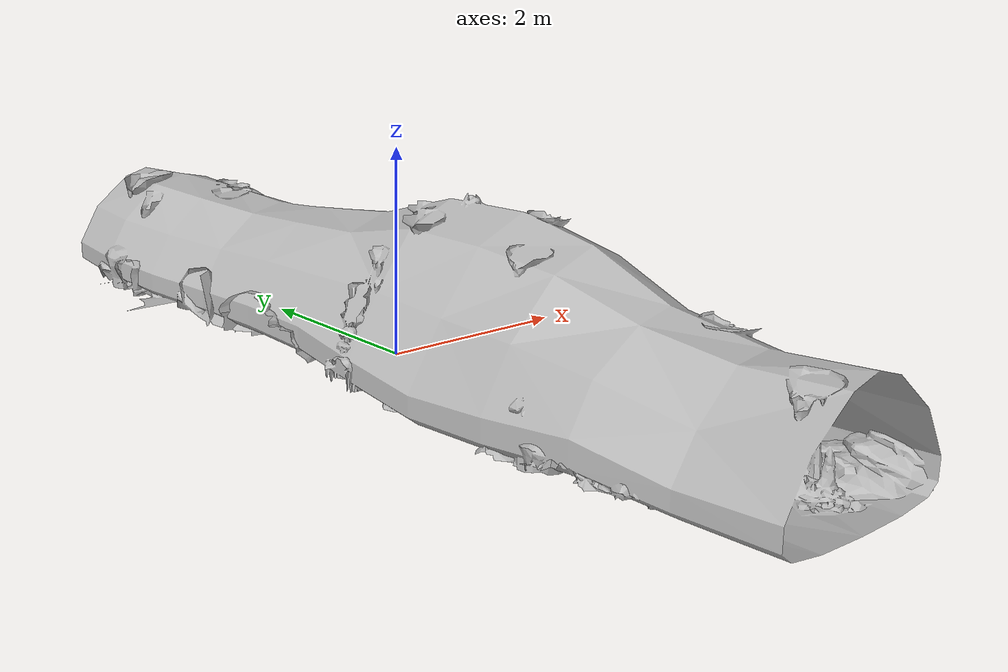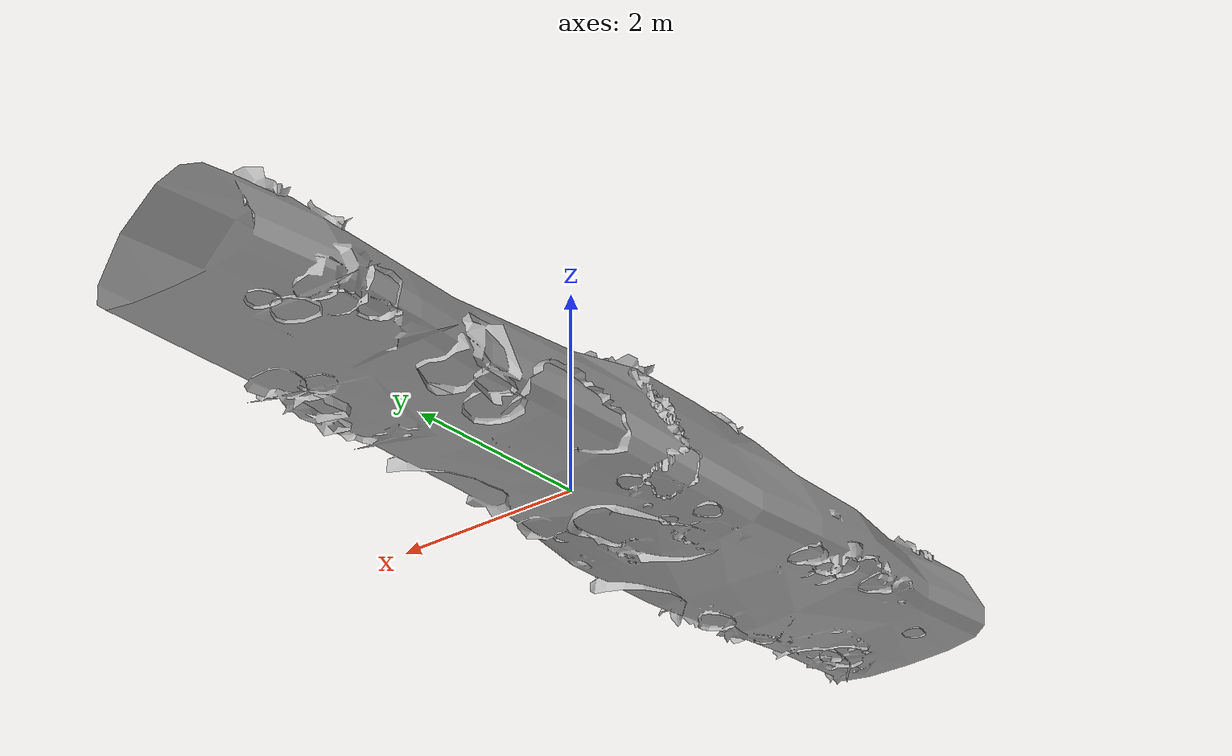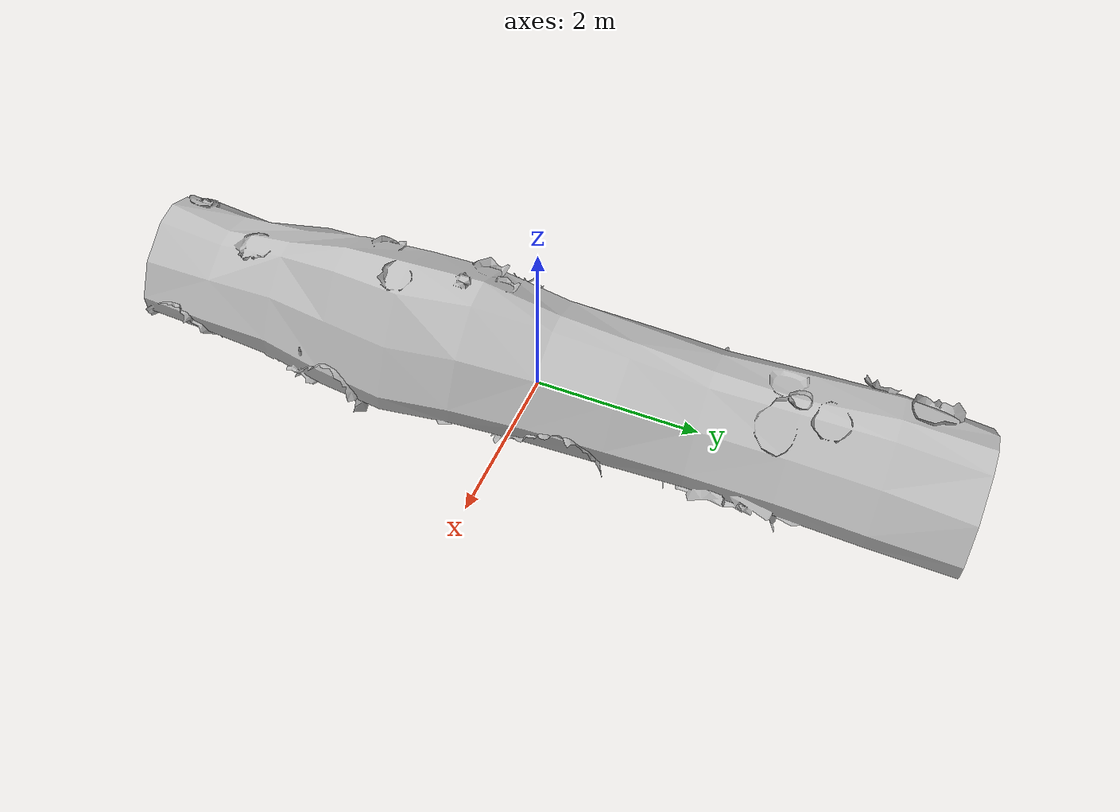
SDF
<?xml version="1.0"?>
<sdf version="1.6">
  <model name="cave_straight">
    <static>true</static>
    <link name="base">
      <pose>0 0 0 0 0 0</pose>
      <collision name="base_collision">
        <pose>0 0 0 0 0 0</pose>
        <geometry>
          <mesh>
            <uri>model://cave_straight/meshes/cave_straight_collider.dae</uri>
          </mesh>
        </geometry>
      </collision>
      <visual name="base_visual">
        <pose>0 0 0 0 0 0</pose>
        <cast_shadows>false</cast_shadows>
        <geometry>
          <mesh>
            <uri>model://cave_straight/meshes/cave_straight.dae</uri>
          </mesh>
        </geometry>
      </visual>
    </link>
  </model>
</sdf>
